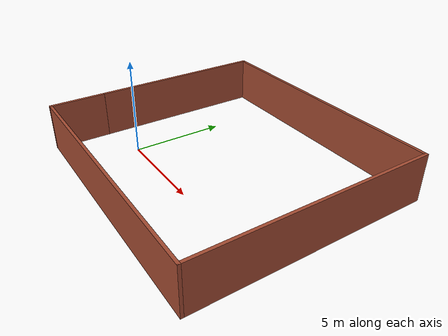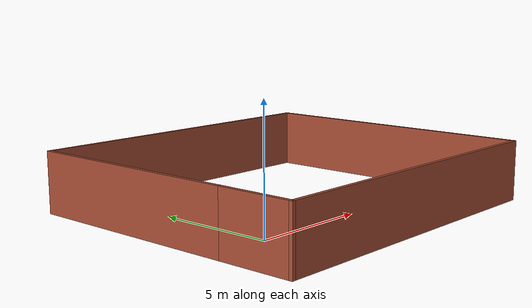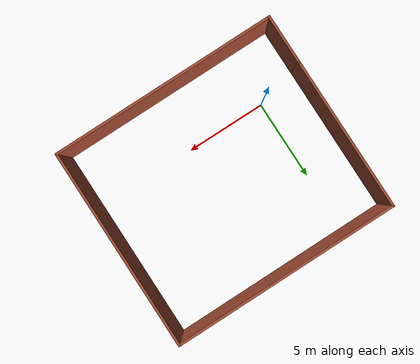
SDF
<?xml version='1.0'?>
<sdf version='1.6'>
  <model name='mybot_square'>
    <pose frame=''>4.295 2.615 0 0 -0 0</pose>
    <link name='Wall_0'>
      <collision name='Wall_0_Collision'>
        <geometry>
          <box>
            <size>9.5 0.15 2.5</size>
          </box>
        </geometry>
        <pose frame=''>0 0 1.25 0 -0 0</pose>
      </collision>
      <visual name='Wall_0_Visual'>
        <pose frame=''>0 0 1.25 0 -0 0</pose>
        <geometry>
          <box>
            <size>9.5 0.15 2.5</size>
          </box>
        </geometry>
        <material>
          <script>
            <uri>file://media/materials/scripts/gazebo.material</uri>
            <name>Gazebo/Bricks</name>
          </script>
          <ambient>1 1 1 1</ambient>
        </material>
        <meta>
          <layer>0</layer>
        </meta>
      </visual>
      <pose frame=''>-6.925 1.5 0 0 -0 1.5708</pose>
    </link>
    <link name='Wall_1'>
      <collision name='Wall_1_Collision'>
        <geometry>
          <box>
            <size>14 0.15 2.5</size>
          </box>
        </geometry>
        <pose frame=''>0 0 1.25 0 -0 0</pose>
      </collision>
      <visual name='Wall_1_Visual'>
        <pose frame=''>0 0 1.25 0 -0 0</pose>
        <geometry>
          <box>
            <size>14 0.15 2.5</size>
          </box>
        </geometry>
        <material>
          <script>
            <uri>file://media/materials/scripts/gazebo.material</uri>
            <name>Gazebo/Bricks</name>
          </script>
          <ambient>1 1 1 1</ambient>
        </material>
        <meta>
          <layer>0</layer>
        </meta>
      </visual>
      <pose frame=''>-0 6.175 0 0 -0 0</pose>
    </link>
    <link name='Wall_2'>
      <collision name='Wall_2_Collision'>
        <geometry>
          <box>
            <size>12.5 0.15 2.5</size>
          </box>
        </geometry>
        <pose frame=''>0 0 1.25 0 -0 0</pose>
      </collision>
      <visual name='Wall_2_Visual'>
        <pose frame=''>0 0 1.25 0 -0 0</pose>
        <geometry>
          <box>
            <size>12.5 0.15 2.5</size>
          </box>
        </geometry>
        <material>
          <script>
            <uri>file://media/materials/scripts/gazebo.material</uri>
            <name>Gazebo/Bricks</name>
          </script>
          <ambient>1 1 1 1</ambient>
        </material>
        <meta>
          <layer>0</layer>
        </meta>
      </visual>
      <pose frame=''>6.925 0 0 0 -0 -1.5708</pose>
    </link>
    <link name='Wall_3'>
      <collision name='Wall_3_Collision'>
        <geometry>
          <box>
            <size>14 0.15 2.5</size>
          </box>
        </geometry>
        <pose frame=''>0 0 1.25 0 -0 0</pose>
      </collision>
      <visual name='Wall_3_Visual'>
        <pose frame=''>0 0 1.25 0 -0 0</pose>
        <geometry>
          <box>
            <size>14 0.15 2.5</size>
          </box>
        </geometry>
        <material>
          <script>
            <uri>file://media/materials/scripts/gazebo.material</uri>
            <name>Gazebo/Bricks</name>
          </script>
          <ambient>1 1 1 1</ambient>
        </material>
        <meta>
          <layer>0</layer>
        </meta>
      </visual>
      <pose frame=''>-0 -6.175 0 0 -0 3.14159</pose>
    </link>
    <link name='Wall_4'>
      <collision name='Wall_4_Collision'>
        <geometry>
          <box>
            <size>3.15 0.15 2.5</size>
          </box>
        </geometry>
        <pose frame=''>0 0 1.25 0 -0 0</pose>
      </collision>
      <visual name='Wall_4_Visual'>
        <pose frame=''>0 0 1.25 0 -0 0</pose>
        <geometry>
          <box>
            <size>3.15 0.15 2.5</size>
          </box>
        </geometry>
        <material>
          <script>
            <uri>file://media/materials/scripts/gazebo.material</uri>
            <name>Gazebo/Bricks</name>
          </script>
          <ambient>1 1 1 1</ambient>
        </material>
        <meta>
          <layer>0</layer>
        </meta>
      </visual>
      <pose frame=''>-6.925 -4.675 0 0 -0 1.5708</pose>
    </link>
    <static>1</static>
  </model>
</sdf>
